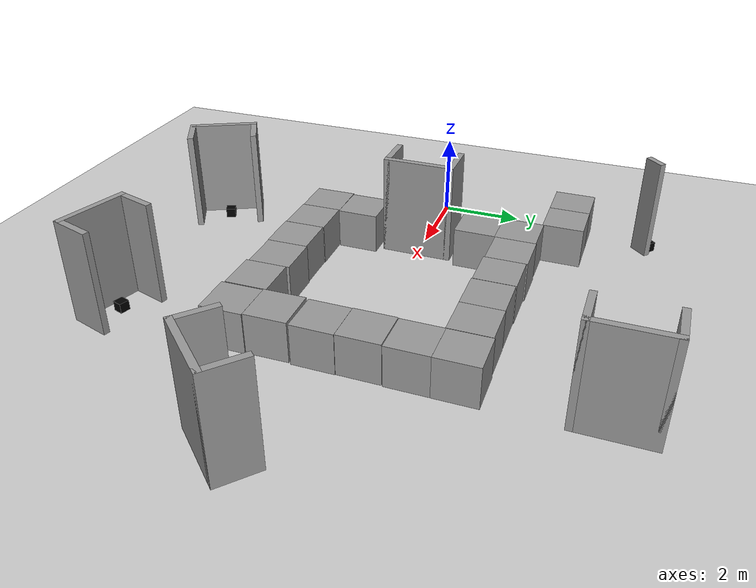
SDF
<sdf version="1.6">
 <world name="default">
  <light name="sun" type="directional">
   <pose>0 0 10 0 -0 0</pose>
   <diffuse>0.8 0.8 0.8 1</diffuse>
   <specular>0.2 0.2 0.2 1</specular>
   <attenuation>
    <range>1000</range>
    <constant>0.9</constant>
    <linear>0.01</linear>
    <quadratic>0.001</quadratic>
   </attenuation>
   <direction>-0.5 0.1 -0.9</direction>
  </light>
  <model name="ground_plane">
   <static>1</static>
   <link name="link">
    <collision name="collision">
     <geometry><plane><normal>0 0 1</normal><size>100 100</size></plane></geometry>
     <surface>
      <contact><collide_bitmask>65535</collide_bitmask></contact>
      <friction><ode><mu>100</mu><mu2>50</mu2></ode></friction>
     </surface>
    </collision>
    <visual name="visual">
     <cast_shadows>0</cast_shadows>
     <geometry><plane><normal>0 0 1</normal><size>100 100</size></plane></geometry>
     <material>
      <script><uri>file://media/materials/scripts/gazebo.material</uri><name>Gazebo/Grey</name></script>
     </material>
    </visual>
   </link>
  </model>
  <gravity>0 0 -9.8</gravity>
  <magnetic_field>6e-06 2.3e-05 -4.2e-05</magnetic_field>
  <atmosphere type="adiabatic"/>
  <physics name="default_physics" default="0" type="ode">
   <max_step_size>0.001</max_step_size>
   <real_time_factor>1</real_time_factor>
   <real_time_update_rate>1000</real_time_update_rate>
  </physics>
  <scene><ambient>0.4 0.4 0.4 1</ambient><background>0.7 0.7 0.7 1</background><shadows>1</shadows></scene>
  <audio><device>default</device></audio>
  <spherical_coordinates>
   <surface_model>EARTH_WGS84</surface_model>
   <latitude_deg>0</latitude_deg>
   <longitude_deg>0</longitude_deg>
   <elevation>0</elevation>
   <heading_deg>0</heading_deg>
  </spherical_coordinates>
  <model name="unit_box">
   <pose>2.48374 2.51989 0.499995 1e-05 -0 -0.001088</pose>
   <link name="link">
    <inertial>
     <mass>1</mass>
     <inertia>
      <ixx>0.166667</ixx>
      <ixy>0</ixy>
      <ixz>0</ixz>
      <iyy>0.166667</iyy>
      <iyz>0</iyz>
      <izz>0.166667</izz>
     </inertia>
    </inertial>
    <collision name="collision"><geometry><box><size>1 1 1</size></box></geometry></collision>
    <visual name="visual">
     <geometry><box><size>1 1 1</size></box></geometry>
     <material>
      <script><name>Gazebo/Grey</name><uri>file://media/materials/scripts/gazebo.material</uri></script>
     </material>
    </visual>
   </link>
  </model>
  <model name="unit_box_0">
   <pose>2.48157 -2.51389 0.499995 0 1e-05 0.01694</pose>
   <link name="link">
    <inertial>
     <mass>1</mass>
     <inertia>
      <ixx>0.166667</ixx>
      <ixy>0</ixy>
      <ixz>0</ixz>
      <iyy>0.166667</iyy>
      <iyz>0</iyz>
      <izz>0.166667</izz>
     </inertia>
    </inertial>
    <collision name="collision"><geometry><box><size>1 1 1</size></box></geometry></collision>
    <visual name="visual">
     <geometry><box><size>1 1 1</size></box></geometry>
     <material>
      <script><name>Gazebo/Grey</name><uri>file://media/materials/scripts/gazebo.material</uri></script>
     </material>
    </visual>
   </link>
  </model>
  <model name="unit_box_1">
   <pose>7.50001 2.50809 0.499995 -1e-05 0 0.001096</pose>
   <link name="link">
    <inertial>
     <mass>1</mass>
     <inertia>
      <ixx>0.166667</ixx>
      <ixy>0</ixy>
      <ixz>0</ixz>
      <iyy>0.166667</iyy>
      <iyz>0</iyz>
      <izz>0.166667</izz>
     </inertia>
    </inertial>
    <collision name="collision"><geometry><box><size>1 1 1</size></box></geometry></collision>
    <visual name="visual">
     <geometry><box><size>1 1 1</size></box></geometry>
     <material>
      <script><name>Gazebo/Grey</name><uri>file://media/materials/scripts/gazebo.material</uri></script>
     </material>
    </visual>
   </link>
  </model>
  <model name="unit_box_2">
   <pose>7.50868 -2.57199 0.499995 -0 -1e-05 0.015287</pose>
   <link name="link">
    <inertial>
     <mass>1</mass>
     <inertia>
      <ixx>0.166667</ixx>
      <ixy>0</ixy>
      <ixz>0</ixz>
      <iyy>0.166667</iyy>
      <iyz>0</iyz>
      <izz>0.166667</izz>
     </inertia>
    </inertial>
    <collision name="collision"><geometry><box><size>1 1 1</size></box></geometry></collision>
    <visual name="visual">
     <geometry><box><size>1 1 1</size></box></geometry>
     <material>
      <script><name>Gazebo/Grey</name><uri>file://media/materials/scripts/gazebo.material</uri></script>
     </material>
    </visual>
   </link>
  </model>
  <model name="aruco_box_1">
   <link name="link_0">
    <inertial>
     <mass>1</mass>
     <inertia>
      <ixx>0.166667</ixx>
      <ixy>0</ixy>
      <ixz>0</ixz>
      <iyy>0.166667</iyy>
      <iyz>0</iyz>
      <izz>0.166667</izz>
     </inertia>
    </inertial>
    <visual name="visual">
     <geometry><box><size>0.24 0.24 0.24</size></box></geometry>
     <material>
      <lighting>1</lighting>
      <script>
       <uri>model://aruco_box_1/materials/scripts</uri>
       <uri>model://aruco_box_1/materials/textures</uri>
       <name>Aruco/Id1</name>
      </script>
      <shader type="vertex"><normal_map>__default__</normal_map></shader>
      <ambient>0 0 0 1</ambient>
      <diffuse>0 0 0 1</diffuse>
      <specular>0 0 0 0</specular>
      <emissive>1 1 1 1</emissive>
     </material>
    </visual>
    <collision name="collision">
     <geometry><box><size>0.24 0.24 0.24</size></box></geometry>
     <surface>
      <friction>
       <ode><mu>1</mu><mu2>1</mu2><fdir1>0 0 0</fdir1><slip1>0</slip1><slip2>0</slip2></ode>
       <torsional>
        <coefficient>1</coefficient>
        <patch_radius>0</patch_radius>
        <surface_radius>0</surface_radius>
        <use_patch_radius>1</use_patch_radius>
        <ode><slip>0</slip></ode>
       </torsional>
      </friction>
      <bounce><restitution_coefficient>0</restitution_coefficient><threshold>1e+06</threshold></bounce>
      <contact>
       <collide_without_contact>0</collide_without_contact>
       <collide_without_contact_bitmask>1</collide_without_contact_bitmask>
       <collide_bitmask>1</collide_bitmask>
       <ode>
        <soft_cfm>0</soft_cfm>
        <soft_erp>0.2</soft_erp>
        <kp>1e+13</kp>
        <kd>1</kd>
        <max_vel>0.01</max_vel>
        <min_depth>0</min_depth>
       </ode>
       <bullet>
        <split_impulse>1</split_impulse>
        <split_impulse_penetration_threshold>-0.01</split_impulse_penetration_threshold>
        <soft_cfm>0</soft_cfm>
        <soft_erp>0.2</soft_erp>
        <kp>1e+13</kp>
        <kd>1</kd>
       </bullet>
      </contact>
     </surface>
    </collision>
   </link>
   <static>0</static>
   <pose>0.5 5.5 0.12 0 -0 0.785398</pose>
  </model>
  <model name="aruco_box_2">
   <link name="link_0">
    <inertial>
     <mass>1</mass>
     <inertia>
      <ixx>0.166667</ixx>
      <ixy>0</ixy>
      <ixz>0</ixz>
      <iyy>0.166667</iyy>
      <iyz>0</iyz>
      <izz>0.166667</izz>
     </inertia>
    </inertial>
    <visual name="visual">
     <geometry><box><size>0.24 0.24 0.24</size></box></geometry>
     <material>
      <lighting>1</lighting>
      <script>
       <uri>model://aruco_box_2/materials/scripts</uri>
       <uri>model://aruco_box_2/materials/textures</uri>
       <name>Aruco/Id2</name>
      </script>
      <shader type="vertex"><normal_map>__default__</normal_map></shader>
      <ambient>0 0 0 1</ambient>
      <diffuse>0 0 0 1</diffuse>
      <specular>0 0 0 0</specular>
      <emissive>1 1 1 1</emissive>
     </material>
    </visual>
    <collision name="collision">
     <geometry><box><size>0.24 0.24 0.24</size></box></geometry>
     <surface>
      <friction>
       <ode><mu>1</mu><mu2>1</mu2><fdir1>0 0 0</fdir1><slip1>0</slip1><slip2>0</slip2></ode>
       <torsional>
        <coefficient>1</coefficient>
        <patch_radius>0</patch_radius>
        <surface_radius>0</surface_radius>
        <use_patch_radius>1</use_patch_radius>
        <ode><slip>0</slip></ode>
       </torsional>
      </friction>
      <bounce><restitution_coefficient>0</restitution_coefficient><threshold>1e+06</threshold></bounce>
      <contact>
       <collide_without_contact>0</collide_without_contact>
       <collide_without_contact_bitmask>1</collide_without_contact_bitmask>
       <collide_bitmask>1</collide_bitmask>
       <ode>
        <soft_cfm>0</soft_cfm>
        <soft_erp>0.2</soft_erp>
        <kp>1e+13</kp>
        <kd>1</kd>
        <max_vel>0.01</max_vel>
        <min_depth>0</min_depth>
       </ode>
       <bullet>
        <split_impulse>1</split_impulse>
        <split_impulse_penetration_threshold>-0.01</split_impulse_penetration_threshold>
        <soft_cfm>0</soft_cfm>
        <soft_erp>0.2</soft_erp>
        <kp>1e+13</kp>
        <kd>1</kd>
       </bullet>
      </contact>
     </surface>
    </collision>
   </link>
   <static>0</static>
   <pose>7.5 5.5 0.12 0 -0 0</pose>
  </model>
  <model name="aruco_box_3">
   <link name="link_0">
    <inertial>
     <mass>1</mass>
     <inertia>
      <ixx>0.166667</ixx>
      <ixy>0</ixy>
      <ixz>0</ixz>
      <iyy>0.166667</iyy>
      <iyz>0</iyz>
      <izz>0.166667</izz>
     </inertia>
    </inertial>
    <visual name="visual">
     <geometry><box><size>0.24 0.24 0.24</size></box></geometry>
     <material>
      <lighting>1</lighting>
      <script>
       <uri>model://aruco_box_3/materials/scripts</uri>
       <uri>model://aruco_box_3/materials/textures</uri>
       <name>Aruco/Id3</name>
      </script>
      <shader type="vertex"><normal_map>__default__</normal_map></shader>
      <ambient>0 0 0 1</ambient>
      <diffuse>0 0 0 1</diffuse>
      <specular>0 0 0 0</specular>
      <emissive>1 1 1 1</emissive>
     </material>
    </visual>
    <collision name="collision">
     <geometry><box><size>0.24 0.24 0.24</size></box></geometry>
     <surface>
      <friction>
       <ode><mu>1</mu><mu2>1</mu2><fdir1>0 0 0</fdir1><slip1>0</slip1><slip2>0</slip2></ode>
       <torsional>
        <coefficient>1</coefficient>
        <patch_radius>0</patch_radius>
        <surface_radius>0</surface_radius>
        <use_patch_radius>1</use_patch_radius>
        <ode><slip>0</slip></ode>
       </torsional>
      </friction>
      <bounce><restitution_coefficient>0</restitution_coefficient><threshold>1e+06</threshold></bounce>
      <contact>
       <collide_without_contact>0</collide_without_contact>
       <collide_without_contact_bitmask>1</collide_without_contact_bitmask>
       <collide_bitmask>1</collide_bitmask>
       <ode>
        <soft_cfm>0</soft_cfm>
        <soft_erp>0.2</soft_erp>
        <kp>1e+13</kp>
        <kd>1</kd>
        <max_vel>0.01</max_vel>
        <min_depth>0</min_depth>
       </ode>
       <bullet>
        <split_impulse>1</split_impulse>
        <split_impulse_penetration_threshold>-0.01</split_impulse_penetration_threshold>
        <soft_cfm>0</soft_cfm>
        <soft_erp>0.2</soft_erp>
        <kp>1e+13</kp>
        <kd>1</kd>
       </bullet>
      </contact>
     </surface>
    </collision>
   </link>
   <static>0</static>
   <pose>10.4803 -1.50123 0.12 0 -0 0.785398</pose>
  </model>
  <model name="aruco_box_4">
   <link name="link_0">
    <inertial>
     <mass>1</mass>
     <inertia>
      <ixx>0.166667</ixx>
      <ixy>0</ixy>
      <ixz>0</ixz>
      <iyy>0.166667</iyy>
      <iyz>0</iyz>
      <izz>0.166667</izz>
     </inertia>
    </inertial>
    <visual name="visual">
     <geometry><box><size>0.24 0.24 0.24</size></box></geometry>
     <material>
      <lighting>1</lighting>
      <script>
       <uri>model://aruco_box_4/materials/scripts</uri>
       <uri>model://aruco_box_4/materials/textures</uri>
       <name>Aruco/Id4</name>
      </script>
      <shader type="vertex"><normal_map>__default__</normal_map></shader>
      <ambient>0 0 0 1</ambient>
      <diffuse>0 0 0 1</diffuse>
      <specular>0 0 0 0</specular>
      <emissive>1 1 1 1</emissive>
     </material>
    </visual>
    <collision name="collision">
     <geometry><box><size>0.24 0.24 0.24</size></box></geometry>
     <surface>
      <friction>
       <ode><mu>1</mu><mu2>1</mu2><fdir1>0 0 0</fdir1><slip1>0</slip1><slip2>0</slip2></ode>
       <torsional>
        <coefficient>1</coefficient>
        <patch_radius>0</patch_radius>
        <surface_radius>0</surface_radius>
        <use_patch_radius>1</use_patch_radius>
        <ode><slip>0</slip></ode>
       </torsional>
      </friction>
      <bounce><restitution_coefficient>0</restitution_coefficient><threshold>1e+06</threshold></bounce>
      <contact>
       <collide_without_contact>0</collide_without_contact>
       <collide_without_contact_bitmask>1</collide_without_contact_bitmask>
       <collide_bitmask>1</collide_bitmask>
       <ode>
        <soft_cfm>0</soft_cfm>
        <soft_erp>0.2</soft_erp>
        <kp>1e+13</kp>
        <kd>1</kd>
        <max_vel>0.01</max_vel>
        <min_depth>0</min_depth>
       </ode>
       <bullet>
        <split_impulse>1</split_impulse>
        <split_impulse_penetration_threshold>-0.01</split_impulse_penetration_threshold>
        <soft_cfm>0</soft_cfm>
        <soft_erp>0.2</soft_erp>
        <kp>1e+13</kp>
        <kd>1</kd>
       </bullet>
      </contact>
     </surface>
    </collision>
   </link>
   <static>0</static>
   <pose>7.5 -5.5 0.12 0 -0 -0.308857</pose>
  </model>
  <model name="aruco_box_5">
   <link name="link_0">
    <inertial>
     <mass>1</mass>
     <inertia>
      <ixx>0.166667</ixx>
      <ixy>0</ixy>
      <ixz>0</ixz>
      <iyy>0.166667</iyy>
      <iyz>0</iyz>
      <izz>0.166667</izz>
     </inertia>
    </inertial>
    <visual name="visual">
     <geometry><box><size>0.24 0.24 0.24</size></box></geometry>
     <material>
      <lighting>1</lighting>
      <script>
       <uri>model://aruco_box_5/materials/scripts</uri>
       <uri>model://aruco_box_5/materials/textures</uri>
       <name>Aruco/Id5</name>
      </script>
      <shader type="vertex"><normal_map>__default__</normal_map></shader>
      <ambient>0 0 0 1</ambient>
      <diffuse>0 0 0 1</diffuse>
      <specular>0 0 0 0</specular>
      <emissive>1 1 1 1</emissive>
     </material>
    </visual>
    <collision name="collision">
     <geometry><box><size>0.24 0.24 0.24</size></box></geometry>
     <surface>
      <friction>
       <ode><mu>1</mu><mu2>1</mu2><fdir1>0 0 0</fdir1><slip1>0</slip1><slip2>0</slip2></ode>
       <torsional>
        <coefficient>1</coefficient>
        <patch_radius>0</patch_radius>
        <surface_radius>0</surface_radius>
        <use_patch_radius>1</use_patch_radius>
        <ode><slip>0</slip></ode>
       </torsional>
      </friction>
      <bounce><restitution_coefficient>0</restitution_coefficient><threshold>1e+06</threshold></bounce>
      <contact>
       <collide_without_contact>0</collide_without_contact>
       <collide_without_contact_bitmask>1</collide_without_contact_bitmask>
       <collide_bitmask>1</collide_bitmask>
       <ode>
        <soft_cfm>0</soft_cfm>
        <soft_erp>0.2</soft_erp>
        <kp>1e+13</kp>
        <kd>1</kd>
        <max_vel>0.01</max_vel>
        <min_depth>0</min_depth>
       </ode>
       <bullet>
        <split_impulse>1</split_impulse>
        <split_impulse_penetration_threshold>-0.01</split_impulse_penetration_threshold>
        <soft_cfm>0</soft_cfm>
        <soft_erp>0.2</soft_erp>
        <kp>1e+13</kp>
        <kd>1</kd>
       </bullet>
      </contact>
     </surface>
    </collision>
   </link>
   <static>0</static>
   <pose>2.5 -5.5 0.12 0 -0 -1.14152</pose>
  </model>
  <model name="unit_box_3">
   <pose>2.48011 1.51988 0.499995 -1e-05 0 -0.00107</pose>
   <link name="link">
    <inertial>
     <mass>1</mass>
     <inertia>
      <ixx>0.166667</ixx>
      <ixy>0</ixy>
      <ixz>0</ixz>
      <iyy>0.166667</iyy>
      <iyz>0</iyz>
      <izz>0.166667</izz>
     </inertia>
    </inertial>
    <collision name="collision"><geometry><box><size>1 1 1</size></box></geometry></collision>
    <visual name="visual">
     <geometry><box><size>1 1 1</size></box></geometry>
     <material>
      <script><name>Gazebo/Grey</name><uri>file://media/materials/scripts/gazebo.material</uri></script>
     </material>
    </visual>
   </link>
  </model>
  <model name="unit_box_4">
   <pose>3.48377 2.53235 0.499995 -1e-05 -0 -0.001082</pose>
   <link name="link">
    <inertial>
     <mass>1</mass>
     <inertia>
      <ixx>0.166667</ixx>
      <ixy>0</ixy>
      <ixz>0</ixz>
      <iyy>0.166667</iyy>
      <iyz>0</iyz>
      <izz>0.166667</izz>
     </inertia>
    </inertial>
    <collision name="collision"><geometry><box><size>1 1 1</size></box></geometry></collision>
    <visual name="visual">
     <geometry><box><size>1 1 1</size></box></geometry>
     <material>
      <script><name>Gazebo/Grey</name><uri>file://media/materials/scripts/gazebo.material</uri></script>
     </material>
    </visual>
   </link>
  </model>
  <model name="unit_box_5">
   <pose>6.4894 2.48759 0.499995 0 1e-05 0</pose>
   <link name="link">
    <inertial>
     <mass>1</mass>
     <inertia>
      <ixx>0.166667</ixx>
      <ixy>0</ixy>
      <ixz>0</ixz>
      <iyy>0.166667</iyy>
      <iyz>0</iyz>
      <izz>0.166667</izz>
     </inertia>
    </inertial>
    <collision name="collision"><geometry><box><size>1 1 1</size></box></geometry></collision>
    <visual name="visual">
     <geometry><box><size>1 1 1</size></box></geometry>
     <material>
      <script><name>Gazebo/Grey</name><uri>file://media/materials/scripts/gazebo.material</uri></script>
     </material>
    </visual>
   </link>
  </model>
  <model name="unit_box_6">
   <pose>7.4984 1.50802 0.499995 -1e-05 0 0.001064</pose>
   <link name="link">
    <inertial>
     <mass>1</mass>
     <inertia>
      <ixx>0.166667</ixx>
      <ixy>0</ixy>
      <ixz>0</ixz>
      <iyy>0.166667</iyy>
      <iyz>0</iyz>
      <izz>0.166667</izz>
     </inertia>
    </inertial>
    <collision name="collision"><geometry><box><size>1 1 1</size></box></geometry></collision>
    <visual name="visual">
     <geometry><box><size>1 1 1</size></box></geometry>
     <material>
      <script><name>Gazebo/Grey</name><uri>file://media/materials/scripts/gazebo.material</uri></script>
     </material>
    </visual>
   </link>
  </model>
  <model name="unit_box_7">
   <pose>7.46633 -1.57153 0.499995 0 1e-05 0.017191</pose>
   <link name="link">
    <inertial>
     <mass>1</mass>
     <inertia>
      <ixx>0.166667</ixx>
      <ixy>0</ixy>
      <ixz>0</ixz>
      <iyy>0.166667</iyy>
      <iyz>0</iyz>
      <izz>0.166667</izz>
     </inertia>
    </inertial>
    <collision name="collision"><geometry><box><size>1 1 1</size></box></geometry></collision>
    <visual name="visual">
     <geometry><box><size>1 1 1</size></box></geometry>
     <material>
      <script><name>Gazebo/Grey</name><uri>file://media/materials/scripts/gazebo.material</uri></script>
     </material>
    </visual>
   </link>
  </model>
  <model name="unit_box_8">
   <pose>6.48297 -2.52955 0.499995 0 1e-05 0.017949</pose>
   <link name="link">
    <inertial>
     <mass>1</mass>
     <inertia>
      <ixx>0.166667</ixx>
      <ixy>0</ixy>
      <ixz>0</ixz>
      <iyy>0.166667</iyy>
      <iyz>0</iyz>
      <izz>0.166667</izz>
     </inertia>
    </inertial>
    <collision name="collision"><geometry><box><size>1 1 1</size></box></geometry></collision>
    <visual name="visual">
     <geometry><box><size>1 1 1</size></box></geometry>
     <material>
      <script><name>Gazebo/Grey</name><uri>file://media/materials/scripts/gazebo.material</uri></script>
     </material>
    </visual>
   </link>
  </model>
  <model name="unit_box_9">
   <pose>3.48171 -2.51418 0.5 0 -0 0.016943</pose>
   <link name="link">
    <inertial>
     <mass>1</mass>
     <inertia>
      <ixx>0.166667</ixx>
      <ixy>0</ixy>
      <ixz>0</ixz>
      <iyy>0.166667</iyy>
      <iyz>0</iyz>
      <izz>0.166667</izz>
     </inertia>
    </inertial>
    <collision name="collision"><geometry><box><size>1 1 1</size></box></geometry></collision>
    <visual name="visual">
     <geometry><box><size>1 1 1</size></box></geometry>
     <material>
      <script><name>Gazebo/Grey</name><uri>file://media/materials/scripts/gazebo.material</uri></script>
     </material>
    </visual>
   </link>
  </model>
  <model name="unit_box_10">
   <pose>2.5173 -1.50635 0.499995 1e-05 -0 0.001881</pose>
   <link name="link">
    <inertial>
     <mass>1</mass>
     <inertia>
      <ixx>0.166667</ixx>
      <ixy>0</ixy>
      <ixz>0</ixz>
      <iyy>0.166667</iyy>
      <iyz>0</iyz>
      <izz>0.166667</izz>
     </inertia>
    </inertial>
    <collision name="collision"><geometry><box><size>1 1 1</size></box></geometry></collision>
    <visual name="visual">
     <geometry><box><size>1 1 1</size></box></geometry>
     <material>
      <script><name>Gazebo/Grey</name><uri>file://media/materials/scripts/gazebo.material</uri></script>
     </material>
    </visual>
   </link>
  </model>
  <model name="unit_box_11">
   <pose>5.48182 -2.47878 0.499995 0 1e-05 0.017791</pose>
   <link name="link">
    <inertial>
     <mass>1</mass>
     <inertia>
      <ixx>0.166667</ixx>
      <ixy>0</ixy>
      <ixz>0</ixz>
      <iyy>0.166667</iyy>
      <iyz>0</iyz>
      <izz>0.166667</izz>
     </inertia>
    </inertial>
    <collision name="collision"><geometry><box><size>1 1 1</size></box></geometry></collision>
    <visual name="visual">
     <geometry><box><size>1 1 1</size></box></geometry>
     <material>
      <script><name>Gazebo/Grey</name><uri>file://media/materials/scripts/gazebo.material</uri></script>
     </material>
    </visual>
   </link>
  </model>
  <model name="unit_box_13">
   <pose>4.48224 -2.51496 0.499995 0 1e-05 0.017673</pose>
   <link name="link">
    <inertial>
     <mass>1</mass>
     <inertia>
      <ixx>0.166667</ixx>
      <ixy>0</ixy>
      <ixz>0</ixz>
      <iyy>0.166667</iyy>
      <iyz>0</iyz>
      <izz>0.166667</izz>
     </inertia>
    </inertial>
    <collision name="collision"><geometry><box><size>1 1 1</size></box></geometry></collision>
    <visual name="visual">
     <geometry><box><size>1 1 1</size></box></geometry>
     <material>
      <script><name>Gazebo/Grey</name><uri>file://media/materials/scripts/gazebo.material</uri></script>
     </material>
    </visual>
   </link>
  </model>
  <model name="unit_box_14">
   <pose>5.48937 2.48327 0.499995 0 1e-05 6e-06</pose>
   <link name="link">
    <inertial>
     <mass>1</mass>
     <inertia>
      <ixx>0.166667</ixx>
      <ixy>0</ixy>
      <ixz>0</ixz>
      <iyy>0.166667</iyy>
      <iyz>0</iyz>
      <izz>0.166667</izz>
     </inertia>
    </inertial>
    <collision name="collision"><geometry><box><size>1 1 1</size></box></geometry></collision>
    <visual name="visual">
     <geometry><box><size>1 1 1</size></box></geometry>
     <material>
      <script><name>Gazebo/Grey</name><uri>file://media/materials/scripts/gazebo.material</uri></script>
     </material>
    </visual>
   </link>
  </model>
  <model name="unit_box_15">
   <pose>4.48377 2.50118 0.499995 0 -1e-05 -0.001067</pose>
   <link name="link">
    <inertial>
     <mass>1</mass>
     <inertia>
      <ixx>0.166667</ixx>
      <ixy>0</ixy>
      <ixz>0</ixz>
      <iyy>0.166667</iyy>
      <iyz>0</iyz>
      <izz>0.166667</izz>
     </inertia>
    </inertial>
    <collision name="collision"><geometry><box><size>1 1 1</size></box></geometry></collision>
    <visual name="visual">
     <geometry><box><size>1 1 1</size></box></geometry>
     <material>
      <script><name>Gazebo/Grey</name><uri>file://media/materials/scripts/gazebo.material</uri></script>
     </material>
    </visual>
   </link>
  </model>
  <model name="aruco_box_0">
   <link name="link_0">
    <inertial>
     <mass>1</mass>
     <inertia>
      <ixx>0.166667</ixx>
      <ixy>0</ixy>
      <ixz>0</ixz>
      <iyy>0.166667</iyy>
      <iyz>0</iyz>
      <izz>0.166667</izz>
     </inertia>
    </inertial>
    <visual name="visual">
     <geometry><box><size>0.24 0.24 0.24</size></box></geometry>
     <material>
      <lighting>1</lighting>
      <script>
       <uri>model://aruco_box_0/materials/scripts</uri>
       <uri>model://aruco_box_0/materials/textures</uri>
       <name>Aruco/Id0</name>
      </script>
      <shader type="vertex"><normal_map>__default__</normal_map></shader>
      <ambient>0 0 0 1</ambient>
      <diffuse>0 0 0 1</diffuse>
      <specular>0 0 0 0</specular>
      <emissive>1 1 1 1</emissive>
     </material>
    </visual>
    <collision name="collision">
     <geometry><box><size>0.24 0.24 0.24</size></box></geometry>
     <surface>
      <friction>
       <ode><mu>1</mu><mu2>1</mu2><fdir1>0 0 0</fdir1><slip1>0</slip1><slip2>0</slip2></ode>
       <torsional>
        <coefficient>1</coefficient>
        <patch_radius>0</patch_radius>
        <surface_radius>0</surface_radius>
        <use_patch_radius>1</use_patch_radius>
        <ode><slip>0</slip></ode>
       </torsional>
      </friction>
      <bounce><restitution_coefficient>0</restitution_coefficient><threshold>1e+06</threshold></bounce>
      <contact>
       <collide_without_contact>0</collide_without_contact>
       <collide_without_contact_bitmask>1</collide_without_contact_bitmask>
       <collide_bitmask>1</collide_bitmask>
       <ode>
        <soft_cfm>0</soft_cfm>
        <soft_erp>0.2</soft_erp>
        <kp>1e+13</kp>
        <kd>1</kd>
        <max_vel>0.01</max_vel>
        <min_depth>0</min_depth>
       </ode>
       <bullet>
        <split_impulse>1</split_impulse>
        <split_impulse_penetration_threshold>-0.01</split_impulse_penetration_threshold>
        <soft_cfm>0</soft_cfm>
        <soft_erp>0.2</soft_erp>
        <kp>1e+13</kp>
        <kd>1</kd>
       </bullet>
      </contact>
     </surface>
    </collision>
   </link>
   <static>0</static>
   <pose>1.5 0 0.12 0 0 -0.0001</pose>
  </model>
  <model name="simple_wall">
   <pose>2.30659 0.000145 0 0 0 -1.57</pose>
   <link name="Wall_34">
    <collision name="Wall_34_Collision">
     <geometry><box><size>1 0.15 2.5</size></box></geometry>
     <pose>0 0 1.25 0 -0 0</pose>
    </collision>
    <visual name="Wall_34_Visual">
     <pose>0 0 1.25 0 -0 0</pose>
     <geometry><box><size>1 0.15 2.5</size></box></geometry>
     <material>
      <script><uri>file://media/materials/scripts/gazebo.material</uri><name>Gazebo/Grey</name></script>
      <ambient>1 1 1 1</ambient>
     </material>
     <meta><layer>0</layer></meta>
    </visual>
    <pose>-0.8 0 0 0 -0 1.5708</pose>
   </link>
   <link name="Wall_35">
    <collision name="Wall_35_Collision">
     <geometry><box><size>1.75 0.15 2.5</size></box></geometry>
     <pose>0 0 1.25 0 -0 0</pose>
    </collision>
    <visual name="Wall_35_Visual">
     <pose>0 0 1.25 0 -0 0</pose>
     <geometry><box><size>1.75 0.15 2.5</size></box></geometry>
     <material>
      <script><uri>file://media/materials/scripts/gazebo.material</uri><name>Gazebo/Grey</name></script>
      <ambient>1 1 1 1</ambient>
     </material>
     <meta><layer>0</layer></meta>
    </visual>
    <pose>0 0.425 0 0 -0 0</pose>
   </link>
   <link name="Wall_36">
    <collision name="Wall_36_Collision">
     <geometry><box><size>1 0.15 2.5</size></box></geometry>
     <pose>0 0 1.25 0 -0 0</pose>
    </collision>
    <visual name="Wall_36_Visual">
     <pose>0 0 1.25 0 -0 0</pose>
     <geometry><box><size>1 0.15 2.5</size></box></geometry>
     <material>
      <script><uri>file://media/materials/scripts/gazebo.material</uri><name>Gazebo/Grey</name></script>
      <ambient>1 1 1 1</ambient>
     </material>
     <meta><layer>0</layer></meta>
    </visual>
    <pose>0.8 0 0 0 -0 -1.5708</pose>
   </link>
   <static>1</static>
  </model>
  <model name="simple_wall_0">
   <pose>7.5 5.5 0 0 0 -1.5708</pose>
   <link name="Wall_34">
    <collision name="Wall_34_Collision">
     <geometry><box><size>1 0.15 2.5</size></box></geometry>
     <pose>0 0 1.25 0 -0 0</pose>
    </collision>
    <visual name="Wall_34_Visual">
     <pose>0 0 1.25 0 -0 0</pose>
     <geometry><box><size>1 0.15 2.5</size></box></geometry>
     <material>
      <script><uri>file://media/materials/scripts/gazebo.material</uri><name>Gazebo/Grey</name></script>
      <ambient>1 1 1 1</ambient>
     </material>
     <meta><layer>0</layer></meta>
    </visual>
    <pose>-0.8 0 0 0 -0 1.5708</pose>
   </link>
   <link name="Wall_35">
    <collision name="Wall_35_Collision">
     <geometry><box><size>1.75 0.15 2.5</size></box></geometry>
     <pose>0 0 1.25 0 -0 0</pose>
    </collision>
    <visual name="Wall_35_Visual">
     <pose>0 0 1.25 0 -0 0</pose>
     <geometry><box><size>1.75 0.15 2.5</size></box></geometry>
     <material>
      <script><uri>file://media/materials/scripts/gazebo.material</uri><name>Gazebo/Grey</name></script>
      <ambient>1 1 1 1</ambient>
     </material>
     <meta><layer>0</layer></meta>
    </visual>
    <pose>0 0.425 0 0 -0 0</pose>
   </link>
   <link name="Wall_36">
    <collision name="Wall_36_Collision">
     <geometry><box><size>1 0.15 2.5</size></box></geometry>
     <pose>0 0 1.25 0 -0 0</pose>
    </collision>
    <visual name="Wall_36_Visual">
     <pose>0 0 1.25 0 -0 0</pose>
     <geometry><box><size>1 0.15 2.5</size></box></geometry>
     <material>
      <script><uri>file://media/materials/scripts/gazebo.material</uri><name>Gazebo/Grey</name></script>
      <ambient>1 1 1 1</ambient>
     </material>
     <meta><layer>0</layer></meta>
    </visual>
    <pose>0.8 0 0 0 -0 -1.5708</pose>
   </link>
   <static>1</static>
  </model>
  <model name="unit_box_17">
   <pose>1.48513 3.48881 0.5 0 -1e-06 -0.001958</pose>
   <link name="link">
    <inertial>
     <mass>1</mass>
     <inertia>
      <ixx>0.166667</ixx>
      <ixy>0</ixy>
      <ixz>0</ixz>
      <iyy>0.166667</iyy>
      <iyz>0</iyz>
      <izz>0.166667</izz>
     </inertia>
    </inertial>
    <collision name="collision"><geometry><box><size>1 1 1</size></box></geometry></collision>
    <visual name="visual">
     <geometry><box><size>1 1 1</size></box></geometry>
     <material>
      <script><name>Gazebo/Grey</name><uri>file://media/materials/scripts/gazebo.material</uri></script>
     </material>
    </visual>
   </link>
  </model>
  <model name="unit_box_12">
   <pose>7.49078 -0.511667 0.499995 1e-05 -0 0</pose>
   <link name="link">
    <inertial>
     <mass>1</mass>
     <inertia>
      <ixx>0.166667</ixx>
      <ixy>0</ixy>
      <ixz>0</ixz>
      <iyy>0.166667</iyy>
      <iyz>0</iyz>
      <izz>0.166667</izz>
     </inertia>
    </inertial>
    <collision name="collision"><geometry><box><size>1 1 1</size></box></geometry></collision>
    <visual name="visual">
     <geometry><box><size>1 1 1</size></box></geometry>
     <material>
      <script><name>Gazebo/Grey</name><uri>file://media/materials/scripts/gazebo.material</uri></script>
     </material>
    </visual>
   </link>
  </model>
  <model name="unit_box_16">
   <pose>7.47792 0.489551 0.499995 0 1e-05 0</pose>
   <link name="link">
    <inertial>
     <mass>1</mass>
     <inertia>
      <ixx>0.166667</ixx>
      <ixy>0</ixy>
      <ixz>0</ixz>
      <iyy>0.166667</iyy>
      <iyz>0</iyz>
      <izz>0.166667</izz>
     </inertia>
    </inertial>
    <collision name="collision"><geometry><box><size>1 1 1</size></box></geometry></collision>
    <visual name="visual">
     <geometry><box><size>1 1 1</size></box></geometry>
     <material>
      <script><name>Gazebo/Grey</name><uri>file://media/materials/scripts/gazebo.material</uri></script>
     </material>
    </visual>
   </link>
  </model>
  <model name="simple_wall_1">
   <pose>10.6179 -1.08806 0 0 0 -2.29812</pose>
   <link name="Wall_34">
    <collision name="Wall_34_Collision">
     <geometry><box><size>1 0.15 2.5</size></box></geometry>
     <pose>0 0 1.25 0 -0 0</pose>
    </collision>
    <visual name="Wall_34_Visual">
     <pose>0 0 1.25 0 -0 0</pose>
     <geometry><box><size>1 0.15 2.5</size></box></geometry>
     <material>
      <script><uri>file://media/materials/scripts/gazebo.material</uri><name>Gazebo/Grey</name></script>
      <ambient>1 1 1 1</ambient>
     </material>
     <meta><layer>0</layer></meta>
    </visual>
    <pose>-0.8 0 0 0 -0 1.5708</pose>
   </link>
   <link name="Wall_35">
    <collision name="Wall_35_Collision">
     <geometry><box><size>1.75 0.15 2.5</size></box></geometry>
     <pose>0 0 1.25 0 -0 0</pose>
    </collision>
    <visual name="Wall_35_Visual">
     <pose>0 0 1.25 0 -0 0</pose>
     <geometry><box><size>1.75 0.15 2.5</size></box></geometry>
     <material>
      <script><uri>file://media/materials/scripts/gazebo.material</uri><name>Gazebo/Grey</name></script>
      <ambient>1 1 1 1</ambient>
     </material>
     <meta><layer>0</layer></meta>
    </visual>
    <pose>0 0.425 0 0 -0 0</pose>
   </link>
   <link name="Wall_36">
    <collision name="Wall_36_Collision">
     <geometry><box><size>1 0.15 2.5</size></box></geometry>
     <pose>0 0 1.25 0 -0 0</pose>
    </collision>
    <visual name="Wall_36_Visual">
     <pose>0 0 1.25 0 -0 0</pose>
     <geometry><box><size>1 0.15 2.5</size></box></geometry>
     <material>
      <script><uri>file://media/materials/scripts/gazebo.material</uri><name>Gazebo/Grey</name></script>
      <ambient>1 1 1 1</ambient>
     </material>
     <meta><layer>0</layer></meta>
    </visual>
    <pose>0.8 0 0 0 -0 -1.5708</pose>
   </link>
   <static>1</static>
  </model>
  <model name="simple_wall_2">
   <pose>2.5 -5.5 0 0 -0 2.04047</pose>
   <link name="Wall_34">
    <collision name="Wall_34_Collision">
     <geometry><box><size>1 0.15 2.5</size></box></geometry>
     <pose>0 0 1.25 0 -0 0</pose>
    </collision>
    <visual name="Wall_34_Visual">
     <pose>0 0 1.25 0 -0 0</pose>
     <geometry><box><size>1 0.15 2.5</size></box></geometry>
     <material>
      <script><uri>file://media/materials/scripts/gazebo.material</uri><name>Gazebo/Grey</name></script>
      <ambient>1 1 1 1</ambient>
     </material>
     <meta><layer>0</layer></meta>
    </visual>
    <pose>-0.8 0 0 0 -0 1.5708</pose>
   </link>
   <link name="Wall_35">
    <collision name="Wall_35_Collision">
     <geometry><box><size>1.75 0.15 2.5</size></box></geometry>
     <pose>0 0 1.25 0 -0 0</pose>
    </collision>
    <visual name="Wall_35_Visual">
     <pose>0 0 1.25 0 -0 0</pose>
     <geometry><box><size>1.75 0.15 2.5</size></box></geometry>
     <material>
      <script><uri>file://media/materials/scripts/gazebo.material</uri><name>Gazebo/Grey</name></script>
      <ambient>1 1 1 1</ambient>
     </material>
     <meta><layer>0</layer></meta>
    </visual>
    <pose>0 0.425 0 0 -0 0</pose>
   </link>
   <link name="Wall_36">
    <collision name="Wall_36_Collision">
     <geometry><box><size>1 0.15 2.5</size></box></geometry>
     <pose>0 0 1.25 0 -0 0</pose>
    </collision>
    <visual name="Wall_36_Visual">
     <pose>0 0 1.25 0 -0 0</pose>
     <geometry><box><size>1 0.15 2.5</size></box></geometry>
     <material>
      <script><uri>file://media/materials/scripts/gazebo.material</uri><name>Gazebo/Grey</name></script>
      <ambient>1 1 1 1</ambient>
     </material>
     <meta><layer>0</layer></meta>
    </visual>
    <pose>0.8 0 0 0 -0 -1.5708</pose>
   </link>
   <static>1</static>
  </model>
  <model name="unit_box_19">
   <pose>0.48513 3.49167 0.5 0 1e-06 -0.001958</pose>
   <link name="link">
    <inertial>
     <mass>1</mass>
     <inertia>
      <ixx>0.166667</ixx>
      <ixy>0</ixy>
      <ixz>0</ixz>
      <iyy>0.166667</iyy>
      <iyz>0</iyz>
      <izz>0.166667</izz>
     </inertia>
    </inertial>
    <collision name="collision"><geometry><box><size>1 1 1</size></box></geometry></collision>
    <visual name="visual">
     <geometry><box><size>1 1 1</size></box></geometry>
     <material>
      <script><name>Gazebo/Grey</name><uri>file://media/materials/scripts/gazebo.material</uri></script>
     </material>
    </visual>
   </link>
  </model>
  <model name="simple_wall_3">
   <pose>7.5 -5.5 0 0 -0 2.85932</pose>
   <link name="Wall_34">
    <collision name="Wall_34_Collision">
     <geometry><box><size>1 0.15 2.5</size></box></geometry>
     <pose>0 0 1.25 0 -0 0</pose>
    </collision>
    <visual name="Wall_34_Visual">
     <pose>0 0 1.25 0 -0 0</pose>
     <geometry><box><size>1 0.15 2.5</size></box></geometry>
     <material>
      <script><uri>file://media/materials/scripts/gazebo.material</uri><name>Gazebo/Grey</name></script>
      <ambient>1 1 1 1</ambient>
     </material>
     <meta><layer>0</layer></meta>
    </visual>
    <pose>-0.8 0 0 0 -0 1.5708</pose>
   </link>
   <link name="Wall_35">
    <collision name="Wall_35_Collision">
     <geometry><box><size>1.75 0.15 2.5</size></box></geometry>
     <pose>0 0 1.25 0 -0 0</pose>
    </collision>
    <visual name="Wall_35_Visual">
     <pose>0 0 1.25 0 -0 0</pose>
     <geometry><box><size>1.75 0.15 2.5</size></box></geometry>
     <material>
      <script><uri>file://media/materials/scripts/gazebo.material</uri><name>Gazebo/Grey</name></script>
      <ambient>1 1 1 1</ambient>
     </material>
     <meta><layer>0</layer></meta>
    </visual>
    <pose>0 0.425 0 0 -0 0</pose>
   </link>
   <link name="Wall_36">
    <collision name="Wall_36_Collision">
     <geometry><box><size>1 0.15 2.5</size></box></geometry>
     <pose>0 0 1.25 0 -0 0</pose>
    </collision>
    <visual name="Wall_36_Visual">
     <pose>0 0 1.25 0 -0 0</pose>
     <geometry><box><size>1 0.15 2.5</size></box></geometry>
     <material>
      <script><uri>file://media/materials/scripts/gazebo.material</uri><name>Gazebo/Grey</name></script>
      <ambient>1 1 1 1</ambient>
     </material>
     <meta><layer>0</layer></meta>
    </visual>
    <pose>0.8 0 0 0 -0 -1.5708</pose>
   </link>
   <static>1</static>
  </model>
  <model name="wall_0">
   <pose>0.630899 5.33334 0 0 0 -0.771702</pose>
   <link name="Wall_0">
    <collision name="Wall_0_Collision">
     <geometry><box><size>0.5 0.15 2.5</size></box></geometry>
     <pose>0 0 1.25 0 -0 0</pose>
    </collision>
    <visual name="Wall_0_Visual">
     <pose>0 0 1.25 0 -0 0</pose>
     <geometry><box><size>0.5 0.15 2.5</size></box></geometry>
     <material>
      <script><uri>file://media/materials/scripts/gazebo.material</uri><name>Gazebo/Grey</name></script>
      <ambient>1 1 1 1</ambient>
     </material>
     <meta><layer>0</layer></meta>
    </visual>
    <pose>0 -0 0 0 -0 1.5708</pose>
   </link>
   <static>1</static>
  </model>
 </world>
</sdf>
